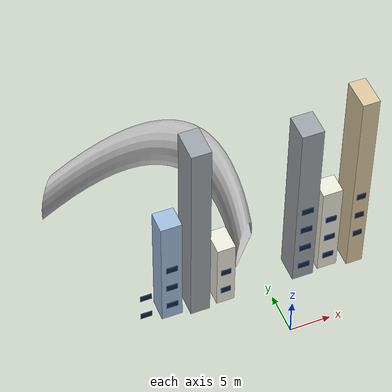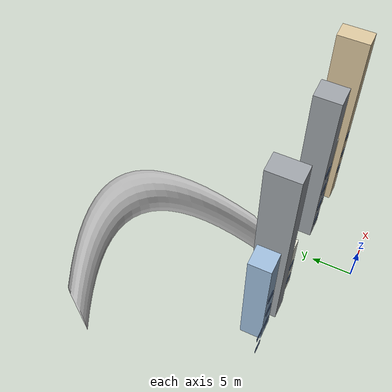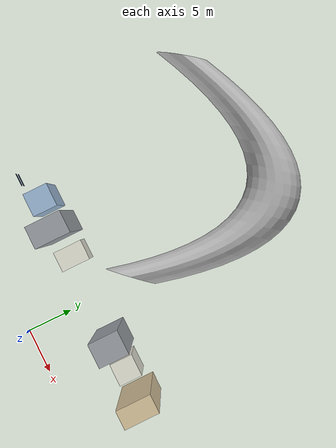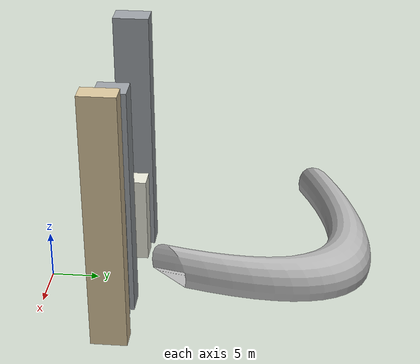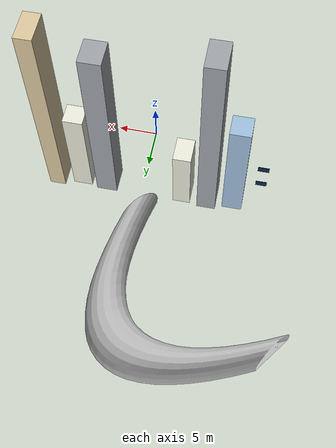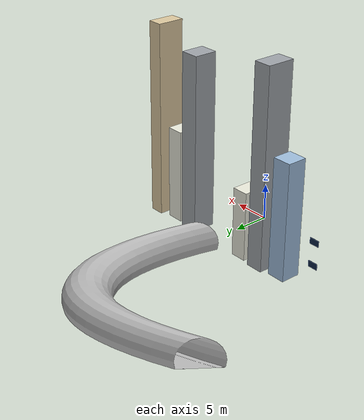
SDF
<sdf version="1.7">
 <world name="urban_street">
  <model name="building_facade_35_window_0">
   <static>1</static>
   <pose>-15 6.57 2.2 0 -0 0</pose>
   <link name="link">
    <collision name="collision"><geometry><box><size>1.4 0.05 0.85</size></box></geometry></collision>
    <visual name="visual">
     <geometry><box><size>1.4 0.05 0.85</size></box></geometry>
     <material>
      <ambient>0.05 0.14 0.28 1</ambient>
      <diffuse>0.05 0.14 0.28 1</diffuse>
      <specular>0.1 0.1 0.1 1</specular>
     </material>
    </visual>
   </link>
  </model>
  <model name="building_facade_35_window_1">
   <static>1</static>
   <pose>-15 6.57 5.4 0 -0 0</pose>
   <link name="link">
    <collision name="collision"><geometry><box><size>1.4 0.05 0.85</size></box></geometry></collision>
    <visual name="visual">
     <geometry><box><size>1.4 0.05 0.85</size></box></geometry>
     <material>
      <ambient>0.05 0.14 0.28 1</ambient>
      <diffuse>0.05 0.14 0.28 1</diffuse>
      <specular>0.1 0.1 0.1 1</specular>
     </material>
    </visual>
   </link>
  </model>
  <model name="building_facade_36">
   <static>1</static>
   <pose>-11.75 8.2 7.93 0 -0 0</pose>
   <link name="link">
    <collision name="collision"><geometry><box><size>2.51 2.65 15.87</size></box></geometry></collision>
    <visual name="visual">
     <geometry><box><size>2.51 2.65 15.87</size></box></geometry>
     <material>
      <ambient>0.62 0.74 0.86 1</ambient>
      <diffuse>0.62 0.74 0.86 1</diffuse>
      <specular>0.1 0.1 0.1 1</specular>
     </material>
    </visual>
   </link>
  </model>
  <model name="building_facade_36_window_0">
   <static>1</static>
   <pose>-11.75 6.85 2.2 0 -0 0</pose>
   <link name="link">
    <collision name="collision"><geometry><box><size>1.38 0.05 0.85</size></box></geometry></collision>
    <visual name="visual">
     <geometry><box><size>1.38 0.05 0.85</size></box></geometry>
     <material>
      <ambient>0.05 0.14 0.28 1</ambient>
      <diffuse>0.05 0.14 0.28 1</diffuse>
      <specular>0.1 0.1 0.1 1</specular>
     </material>
    </visual>
   </link>
  </model>
  <model name="building_facade_36_window_1">
   <static>1</static>
   <pose>-11.75 6.85 5.4 0 -0 0</pose>
   <link name="link">
    <collision name="collision"><geometry><box><size>1.38 0.05 0.85</size></box></geometry></collision>
    <visual name="visual">
     <geometry><box><size>1.38 0.05 0.85</size></box></geometry>
     <material>
      <ambient>0.05 0.14 0.28 1</ambient>
      <diffuse>0.05 0.14 0.28 1</diffuse>
      <specular>0.1 0.1 0.1 1</specular>
     </material>
    </visual>
   </link>
  </model>
  <model name="building_facade_36_window_2">
   <static>1</static>
   <pose>-11.75 6.85 8.6 0 -0 0</pose>
   <link name="link">
    <collision name="collision"><geometry><box><size>1.38 0.05 0.85</size></box></geometry></collision>
    <visual name="visual">
     <geometry><box><size>1.38 0.05 0.85</size></box></geometry>
     <material>
      <ambient>0.05 0.14 0.28 1</ambient>
      <diffuse>0.05 0.14 0.28 1</diffuse>
      <specular>0.1 0.1 0.1 1</specular>
     </material>
    </visual>
   </link>
  </model>
  <model name="building_facade_37">
   <static>1</static>
   <pose>-8.5 8.2 13.45 0 -0 0</pose>
   <link name="link">
    <collision name="collision"><geometry><box><size>2.36 3.74 26.9</size></box></geometry></collision>
    <visual name="visual">
     <geometry><box><size>2.36 3.74 26.9</size></box></geometry>
     <material>
      <ambient>0.62 0.64 0.66 1</ambient>
      <diffuse>0.62 0.64 0.66 1</diffuse>
      <specular>0.1 0.1 0.1 1</specular>
     </material>
    </visual>
   </link>
  </model>
  <model name="building_facade_38">
   <static>1</static>
   <pose>-5.25 8.2 4.73 0 -0 0</pose>
   <link name="link">
    <collision name="collision"><geometry><box><size>2.21 3.15 9.47</size></box></geometry></collision>
    <visual name="visual">
     <geometry><box><size>2.21 3.15 9.47</size></box></geometry>
     <material>
      <ambient>0.92 0.92 0.86 1</ambient>
      <diffuse>0.92 0.92 0.86 1</diffuse>
      <specular>0.1 0.1 0.1 1</specular>
     </material>
    </visual>
   </link>
  </model>
  <model name="building_facade_38_window_0">
   <static>1</static>
   <pose>-5.25 6.59 2.2 0 -0 0</pose>
   <link name="link">
    <collision name="collision"><geometry><box><size>1.22 0.05 0.85</size></box></geometry></collision>
    <visual name="visual">
     <geometry><box><size>1.22 0.05 0.85</size></box></geometry>
     <material>
      <ambient>0.05 0.14 0.28 1</ambient>
      <diffuse>0.05 0.14 0.28 1</diffuse>
      <specular>0.1 0.1 0.1 1</specular>
     </material>
    </visual>
   </link>
  </model>
  <model name="building_facade_38_window_1">
   <static>1</static>
   <pose>-5.25 6.59 5.4 0 -0 0</pose>
   <link name="link">
    <collision name="collision"><geometry><box><size>1.22 0.05 0.85</size></box></geometry></collision>
    <visual name="visual">
     <geometry><box><size>1.22 0.05 0.85</size></box></geometry>
     <material>
      <ambient>0.05 0.14 0.28 1</ambient>
      <diffuse>0.05 0.14 0.28 1</diffuse>
      <specular>0.1 0.1 0.1 1</specular>
     </material>
    </visual>
   </link>
  </model>
  <model name="building_facade_41">
   <static>1</static>
   <pose>4.5 8.2 12.23 0 -0 0</pose>
   <link name="link">
    <collision name="collision"><geometry><box><size>2.61 3.2 24.47</size></box></geometry></collision>
    <visual name="visual">
     <geometry><box><size>2.61 3.2 24.47</size></box></geometry>
     <material>
      <ambient>0.62 0.64 0.66 1</ambient>
      <diffuse>0.62 0.64 0.66 1</diffuse>
      <specular>0.1 0.1 0.1 1</specular>
     </material>
    </visual>
   </link>
  </model>
  <model name="building_facade_41_window_0">
   <static>1</static>
   <pose>4.5 6.57 2.2 0 -0 0</pose>
   <link name="link">
    <collision name="collision"><geometry><box><size>1.44 0.05 0.85</size></box></geometry></collision>
    <visual name="visual">
     <geometry><box><size>1.44 0.05 0.85</size></box></geometry>
     <material>
      <ambient>0.05 0.14 0.28 1</ambient>
      <diffuse>0.05 0.14 0.28 1</diffuse>
      <specular>0.1 0.1 0.1 1</specular>
     </material>
    </visual>
   </link>
  </model>
  <model name="building_facade_41_window_1">
   <static>1</static>
   <pose>4.5 6.57 5.4 0 -0 0</pose>
   <link name="link">
    <collision name="collision"><geometry><box><size>1.44 0.05 0.85</size></box></geometry></collision>
    <visual name="visual">
     <geometry><box><size>1.44 0.05 0.85</size></box></geometry>
     <material>
      <ambient>0.05 0.14 0.28 1</ambient>
      <diffuse>0.05 0.14 0.28 1</diffuse>
      <specular>0.1 0.1 0.1 1</specular>
     </material>
    </visual>
   </link>
  </model>
  <model name="building_facade_41_window_2">
   <static>1</static>
   <pose>4.5 6.57 8.6 0 -0 0</pose>
   <link name="link">
    <collision name="collision"><geometry><box><size>1.44 0.05 0.85</size></box></geometry></collision>
    <visual name="visual">
     <geometry><box><size>1.44 0.05 0.85</size></box></geometry>
     <material>
      <ambient>0.05 0.14 0.28 1</ambient>
      <diffuse>0.05 0.14 0.28 1</diffuse>
      <specular>0.1 0.1 0.1 1</specular>
     </material>
    </visual>
   </link>
  </model>
  <model name="building_facade_41_window_3">
   <static>1</static>
   <pose>4.5 6.57 11.8 0 -0 0</pose>
   <link name="link">
    <collision name="collision"><geometry><box><size>1.44 0.05 0.85</size></box></geometry></collision>
    <visual name="visual">
     <geometry><box><size>1.44 0.05 0.85</size></box></geometry>
     <material>
      <ambient>0.05 0.14 0.28 1</ambient>
      <diffuse>0.05 0.14 0.28 1</diffuse>
      <specular>0.1 0.1 0.1 1</specular>
     </material>
    </visual>
   </link>
  </model>
  <model name="building_facade_42">
   <static>1</static>
   <pose>7.75 8.2 6.55 0 -0 0</pose>
   <link name="link">
    <collision name="collision"><geometry><box><size>2.42 2.5 13.1</size></box></geometry></collision>
    <visual name="visual">
     <geometry><box><size>2.42 2.5 13.1</size></box></geometry>
     <material>
      <ambient>0.92 0.92 0.86 1</ambient>
      <diffuse>0.92 0.92 0.86 1</diffuse>
      <specular>0.1 0.1 0.1 1</specular>
     </material>
    </visual>
   </link>
  </model>
  <model name="building_facade_42_window_0">
   <static>1</static>
   <pose>7.75 6.92 2.2 0 -0 0</pose>
   <link name="link">
    <collision name="collision"><geometry><box><size>1.33 0.05 0.85</size></box></geometry></collision>
    <visual name="visual">
     <geometry><box><size>1.33 0.05 0.85</size></box></geometry>
     <material>
      <ambient>0.05 0.14 0.28 1</ambient>
      <diffuse>0.05 0.14 0.28 1</diffuse>
      <specular>0.1 0.1 0.1 1</specular>
     </material>
    </visual>
   </link>
  </model>
  <model name="building_facade_42_window_1">
   <static>1</static>
   <pose>7.75 6.92 5.4 0 -0 0</pose>
   <link name="link">
    <collision name="collision"><geometry><box><size>1.33 0.05 0.85</size></box></geometry></collision>
    <visual name="visual">
     <geometry><box><size>1.33 0.05 0.85</size></box></geometry>
     <material>
      <ambient>0.05 0.14 0.28 1</ambient>
      <diffuse>0.05 0.14 0.28 1</diffuse>
      <specular>0.1 0.1 0.1 1</specular>
     </material>
    </visual>
   </link>
  </model>
  <model name="building_facade_42_window_2">
   <static>1</static>
   <pose>7.75 6.92 8.6 0 -0 0</pose>
   <link name="link">
    <collision name="collision"><geometry><box><size>1.33 0.05 0.85</size></box></geometry></collision>
    <visual name="visual">
     <geometry><box><size>1.33 0.05 0.85</size></box></geometry>
     <material>
      <ambient>0.05 0.14 0.28 1</ambient>
      <diffuse>0.05 0.14 0.28 1</diffuse>
      <specular>0.1 0.1 0.1 1</specular>
     </material>
    </visual>
   </link>
  </model>
  <model name="building_facade_43">
   <static>1</static>
   <pose>11 8.2 13.48 0 -0 0</pose>
   <link name="link">
    <collision name="collision"><geometry><box><size>2.02 3.71 26.97</size></box></geometry></collision>
    <visual name="visual">
     <geometry><box><size>2.02 3.71 26.97</size></box></geometry>
     <material>
      <ambient>0.86 0.78 0.62 1</ambient>
      <diffuse>0.86 0.78 0.62 1</diffuse>
      <specular>0.1 0.1 0.1 1</specular>
     </material>
    </visual>
   </link>
  </model>
  <model name="building_facade_43_window_1">
   <static>1</static>
   <pose>11 6.32 5.4 0 -0 0</pose>
   <link name="link">
    <collision name="collision"><geometry><box><size>1.11 0.05 0.85</size></box></geometry></collision>
    <visual name="visual">
     <geometry><box><size>1.11 0.05 0.85</size></box></geometry>
     <material>
      <ambient>0.05 0.14 0.28 1</ambient>
      <diffuse>0.05 0.14 0.28 1</diffuse>
      <specular>0.1 0.1 0.1 1</specular>
     </material>
    </visual>
   </link>
  </model>
  <model name="building_facade_43_window_2">
   <static>1</static>
   <pose>11 6.32 8.6 0 -0 0</pose>
   <link name="link">
    <collision name="collision"><geometry><box><size>1.11 0.05 0.85</size></box></geometry></collision>
    <visual name="visual">
     <geometry><box><size>1.11 0.05 0.85</size></box></geometry>
     <material>
      <ambient>0.05 0.14 0.28 1</ambient>
      <diffuse>0.05 0.14 0.28 1</diffuse>
      <specular>0.1 0.1 0.1 1</specular>
     </material>
    </visual>
   </link>
  </model>
  <model name="building_facade_43_window_3">
   <static>1</static>
   <pose>11 6.32 11.8 0 -0 0</pose>
   <link name="link">
    <collision name="collision"><geometry><box><size>1.11 0.05 0.85</size></box></geometry></collision>
    <visual name="visual">
     <geometry><box><size>1.11 0.05 0.85</size></box></geometry>
     <material>
      <ambient>0.05 0.14 0.28 1</ambient>
      <diffuse>0.05 0.14 0.28 1</diffuse>
      <specular>0.1 0.1 0.1 1</specular>
     </material>
    </visual>
   </link>
  </model>
  <model name="tunnel">
   <static>1</static>
   <link name="link">
    <visual name="visual">
     <geometry><mesh><uri>model://tunnel/meshes/tunnel.stl</uri><scale>5 30 30</scale></mesh></geometry>
    </visual>
    <collision name="collision">
     <geometry><mesh><uri>model://tunnel/meshes/tunnel.stl</uri><scale>1 1 1</scale></mesh></geometry>
    </collision>
   </link>
   <pose>-2.43299 29.4249 -0.698418 0 -0 2.45354</pose>
  </model>
 </world>
</sdf>
